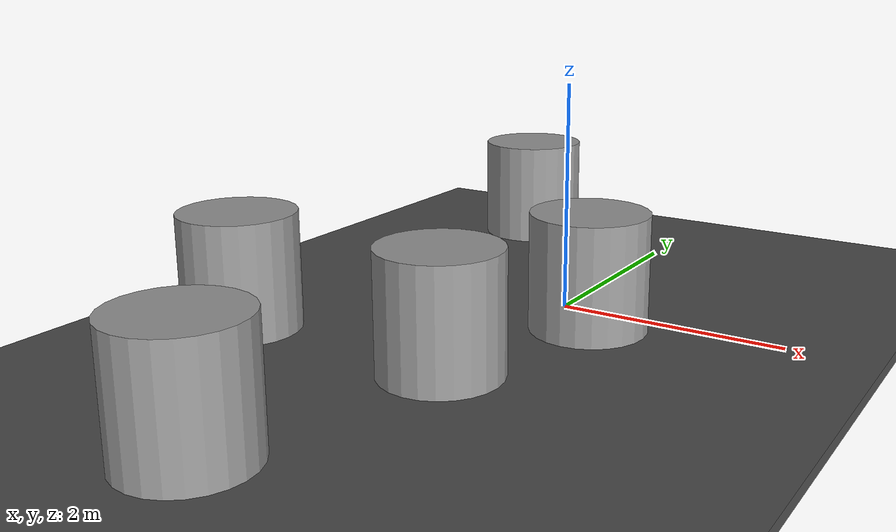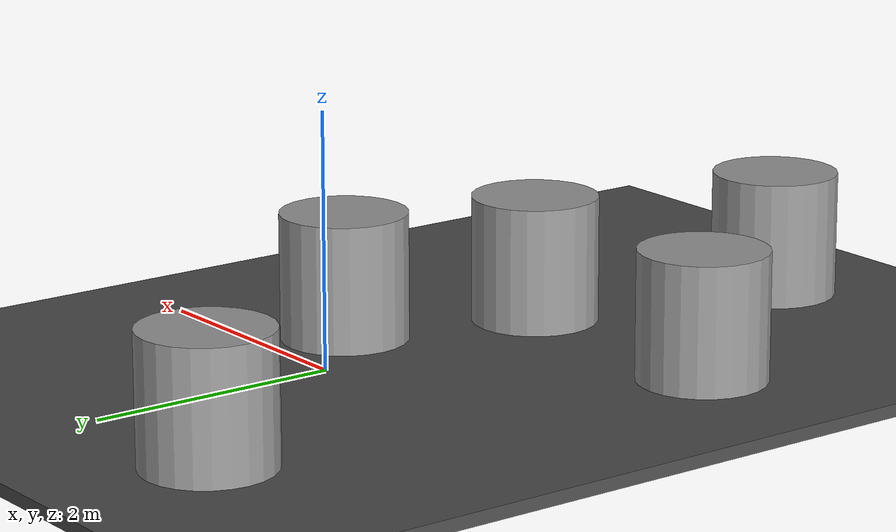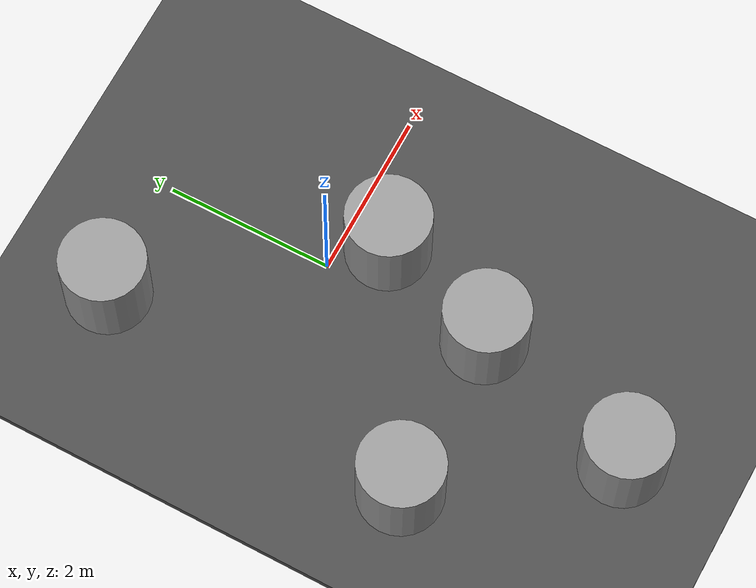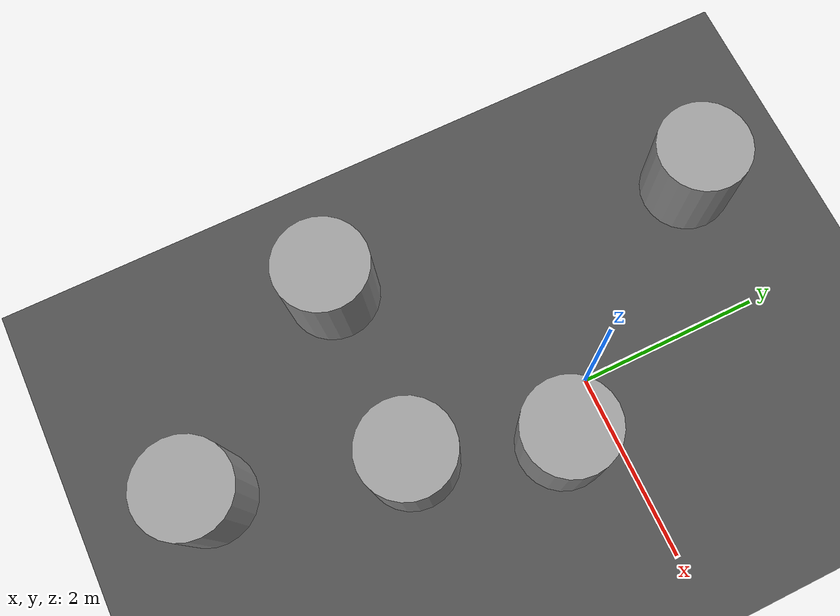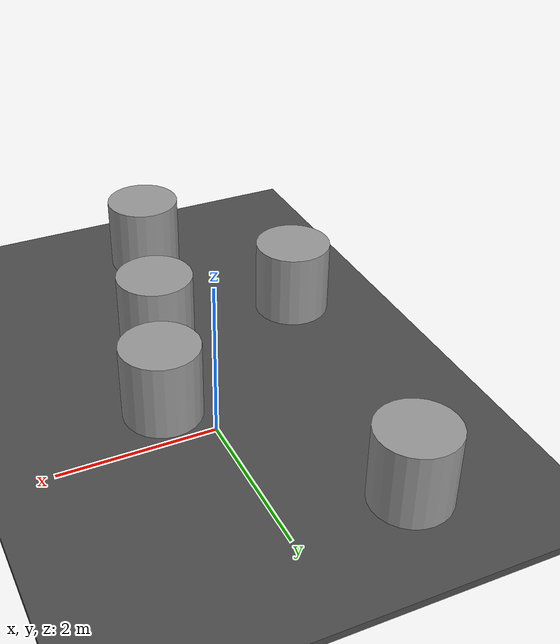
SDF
<sdf version="1.4">
 <world name="default">
  <model name="ground_plane">
   <static>1</static>
   <link name="link">
    <collision name="collision">
     <geometry><plane><normal>0 0 1</normal><size>100 100</size></plane></geometry>
     <surface><friction><ode><mu>100</mu><mu2>50</mu2></ode></friction></surface>
    </collision>
    <visual name="visual">
     <cast_shadows>0</cast_shadows>
     <geometry><plane><normal>0 0 1</normal><size>100 100</size></plane></geometry>
     <material>
      <script><uri>file://media/materials/scripts/gazebo.material</uri><name>Gazebo/Grey</name></script>
     </material>
    </visual>
    <velocity_decay><linear>0</linear><angular>0</angular></velocity_decay>
   </link>
  </model>
  <model name="asphalt_plane">
   <static>1</static>
   <link name="link">
    <collision name="collision"><geometry><box><size>20 20 0.1</size></box></geometry></collision>
    <visual name="visual">
     <cast_shadows>0</cast_shadows>
     <geometry><box><size>20 20 0.1</size></box></geometry>
     <material>
      <script>
       <uri>model://asphalt_plane/materials/scripts</uri>
       <uri>model://asphalt_plane/materials/textures</uri>
       <name>vrc/asphalt</name>
      </script>
     </material>
    </visual>
    <velocity_decay><linear>0</linear><angular>0</angular></velocity_decay>
   </link>
  </model>
  <model name="unit_cylinder_1">
   <pose>0.485715 -0.521567 0.55 0 -0 5.1e-05</pose>
   <link name="link">
    <inertial>
     <mass>1</mass>
     <inertia><ixx>1</ixx><ixy>0</ixy><ixz>0</ixz><iyy>1</iyy><iyz>0</iyz><izz>1</izz></inertia>
    </inertial>
    <collision name="collision">
     <geometry><cylinder><radius>0.5</radius><length>1</length></cylinder></geometry>
    </collision>
    <visual name="visual">
     <geometry><cylinder><radius>0.5</radius><length>1</length></cylinder></geometry>
     <material>
      <script><uri>file://media/materials/scripts/gazebo.material</uri><name>Gazebo/Grey</name></script>
     </material>
    </visual>
    <velocity_decay><linear>0</linear><angular>0</angular></velocity_decay>
   </link>
   <static>0</static>
  </model>
  <model name="unit_cylinder_3">
   <pose>-0 -2 0.549991 1e-06 -0 3.5e-05</pose>
   <link name="link">
    <inertial>
     <mass>1</mass>
     <inertia><ixx>1</ixx><ixy>0</ixy><ixz>0</ixz><iyy>1</iyy><iyz>0</iyz><izz>1</izz></inertia>
    </inertial>
    <collision name="collision">
     <geometry><cylinder><radius>0.5</radius><length>1</length></cylinder></geometry>
    </collision>
    <visual name="visual">
     <geometry><cylinder><radius>0.5</radius><length>1</length></cylinder></geometry>
     <material>
      <script><uri>file://media/materials/scripts/gazebo.material</uri><name>Gazebo/Grey</name></script>
     </material>
    </visual>
    <velocity_decay><linear>0</linear><angular>0</angular></velocity_decay>
   </link>
   <static>0</static>
  </model>
  <model name="unit_cylinder_5">
   <pose>-0.563363 -4 0.550001 1e-06 3.23117e-27 2.1e-05</pose>
   <link name="link">
    <inertial>
     <mass>1</mass>
     <inertia><ixx>1</ixx><ixy>0</ixy><ixz>0</ixz><iyy>1</iyy><iyz>0</iyz><izz>1</izz></inertia>
    </inertial>
    <collision name="collision">
     <geometry><cylinder><radius>0.5</radius><length>1</length></cylinder></geometry>
    </collision>
    <visual name="visual">
     <geometry><cylinder><radius>0.5</radius><length>1</length></cylinder></geometry>
     <material>
      <script><uri>file://media/materials/scripts/gazebo.material</uri><name>Gazebo/Grey</name></script>
     </material>
    </visual>
    <velocity_decay><linear>0</linear><angular>0</angular></velocity_decay>
   </link>
   <static>0</static>
  </model>
  <model name="unit_cylinder_6">
   <pose>-1.46475 2 0.549991 0 -0 2e-05</pose>
   <link name="link">
    <inertial>
     <mass>1</mass>
     <inertia><ixx>1</ixx><ixy>0</ixy><ixz>0</ixz><iyy>1</iyy><iyz>0</iyz><izz>1</izz></inertia>
    </inertial>
    <collision name="collision">
     <geometry><cylinder><radius>0.5</radius><length>1</length></cylinder></geometry>
    </collision>
    <visual name="visual">
     <geometry><cylinder><radius>0.5</radius><length>1</length></cylinder></geometry>
     <material>
      <script><uri>file://media/materials/scripts/gazebo.material</uri><name>Gazebo/Grey</name></script>
     </material>
    </visual>
    <velocity_decay><linear>0</linear><angular>0</angular></velocity_decay>
   </link>
   <static>0</static>
  </model>
  <model name="unit_cylinder_9">
   <pose>-2 -2 0.550001 -1e-06 2e-06 2.2e-05</pose>
   <link name="link">
    <inertial>
     <mass>1</mass>
     <inertia><ixx>1</ixx><ixy>0</ixy><ixz>0</ixz><iyy>1</iyy><iyz>0</iyz><izz>1</izz></inertia>
    </inertial>
    <collision name="collision">
     <geometry><cylinder><radius>0.5</radius><length>1</length></cylinder></geometry>
    </collision>
    <visual name="visual">
     <geometry><cylinder><radius>0.5</radius><length>1</length></cylinder></geometry>
     <material>
      <script><uri>file://media/materials/scripts/gazebo.material</uri><name>Gazebo/Grey</name></script>
     </material>
    </visual>
    <velocity_decay><linear>0</linear><angular>0</angular></velocity_decay>
   </link>
   <static>0</static>
  </model>
 </world>
</sdf>
